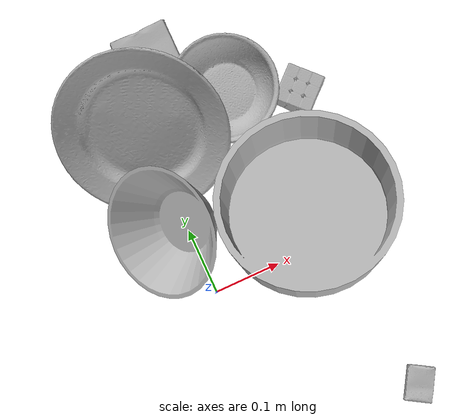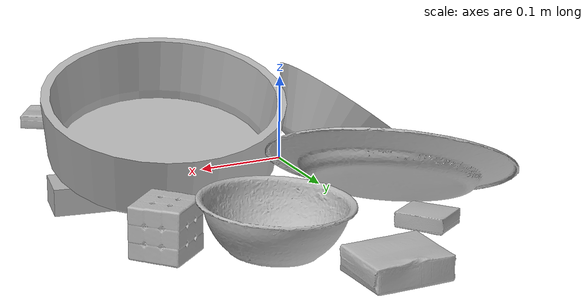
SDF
<sdf version="1.4">
  <world name="default">
    <light name="light1" type="point">
      <pose>0 0 1 0 0 0</pose>
      <diffuse>3 3 3 1</diffuse>
      <specular>3 3 3 1</specular>
    </light>
    <light name="light2" type="point">
      <pose>0 0.5 2 0 0 0</pose>
      <diffuse>1 1 1 1</diffuse>
      <specular>1 1 1 1</specular>
    </light>
    <light name="light3" type="point">
      <pose>0 0.5 2 0 0 0</pose>
      <diffuse>3 3 3 1</diffuse>
      <specular>3 3 3 1</specular>
    </light>
    <scene>
      <ambient>0.7 0.7 0.7</ambient>
    </scene>
    <model name="box1">
      <link name="link_box1">
        <collision name="default">
          <geometry>
            <mesh>
              <uri>model://pudding_box/collision_meshes/collision.obj</uri>
              <scale>0.5 0.5 0.5</scale>
            </mesh>
          </geometry>
          <surface>
            <friction>
              <ode>
                <mu>0.5</mu>
                <mu2>0.5</mu2>
              </ode>
            </friction>
          <contact>
        <ode>
            <max_vel>0</max_vel>
            <min_depth>0.0001</min_depth>
            <kp>1e8</kp>
        </ode>
    </contact></surface>
        </collision>
        <visual name="default">
          <geometry>
            <mesh>
              <uri>model://pudding_box/visual_meshes/visual.dae</uri>
              <scale>0.5 0.5 0.5</scale>
            </mesh>
          </geometry>
        </visual>
        <inertial>
          <mass>0.06043573096394539</mass>
          <pose>0.0002447410661261529 0.00040339428232982755 -0.0002594413817860186 0.005213102238104987 -0.006603800125102895 0.020079827017580043</pose>
          <inertia>
            <ixx>1.707987e-05</ixx>
            <iyy>1.1491458e-05</iyy>
            <izz>2.522289e-05</izz>
            <ixy>0</ixy>
            <ixz>0</ixz>
            <iyz>0</iyz>
          </inertia>
        </inertial>
      </link>
      <pose>-0.041787177324295044 0.26316604018211365 0.009863085113465786 0.02234273050588134 -0.0113787897339799 0.5802445202642985</pose>
    </model>
    <model name="box11">
      <link name="link_box11">
        <collision name="default">
          <geometry>
            <mesh>
              <uri>model://wood_block/collision_meshes/collision.obj</uri>
              <scale>0.5 0.5 0.5</scale>
            </mesh>
          </geometry>
          <surface>
            <friction>
              <ode>
                <mu>0.5</mu>
                <mu2>0.5</mu2>
              </ode>
            </friction>
          <contact>
        <ode>
            <max_vel>0</max_vel>
            <min_depth>0.0001</min_depth>
            <kp>1e8</kp>
        </ode>
    </contact></surface>
        </collision>
        <visual name="default">
          <geometry>
            <mesh>
              <uri>model://wood_block/visual_meshes/visual.dae</uri>
              <scale>0.5 0.5 0.5</scale>
            </mesh>
          </geometry>
        </visual>
        <inertial>
          <mass>0.22556793689727783</mass>
          <pose>-2.9066577553749084e-06 -0.000285404734313488 0.00013204290007706732 -0.05220975528916272 -0.005192696013017626 -0.0068613779154948285</pose>
          <inertia>
            <ixx>7.5461e-05</ixx>
            <iyy>0.00023838133</iyy>
            <izz>0.00023748967</izz>
            <ixy>0</ixy>
            <ixz>0</ixz>
            <iyz>0</iyz>
          </inertia>
        </inertial>
      </link>
      <pose>0.1781572699546814 0.0028367526829242706 0.022632014006376266 -0.00547347421425609 0.005720420456977803 -0.4483890994240161</pose>
    </model>
    <model name="box2">
      <link name="link_box2">
        <collision name="default">
          <geometry>
            <mesh>
              <uri>model://jenga/collision_meshes/collision.obj</uri>
              <scale>1.0 1.0 1.0</scale>
            </mesh>
          </geometry>
          <surface>
            <friction>
              <ode>
                <mu>0.5</mu>
                <mu2>0.5</mu2>
              </ode>
            </friction>
          <contact>
        <ode>
            <max_vel>0</max_vel>
            <min_depth>0.0001</min_depth>
            <kp>1e8</kp>
        </ode>
    </contact></surface>
        </collision>
        <visual name="default">
          <geometry>
            <mesh>
              <uri>model://jenga/visual_meshes/visual.dae</uri>
              <scale>1.0 1.0 1.0</scale>
            </mesh>
          </geometry>
        </visual>
        <inertial>
          <mass>0.2534179985523224</mass>
          <pose>-2.502856091268768e-07 -0.00010250010382151231 -4.0923401684267446e-05 0.0 -7.342154049184251e-07 0.0</pose>
          <inertia>
            <ixx>7.012692e-05</ixx>
            <iyy>0.00047517804</iyy>
            <izz>0.000507293</izz>
            <ixy>0</ixy>
            <ixz>0</ixz>
            <iyz>0</iyz>
          </inertia>
        </inertial>
      </link>
      <pose>0.22320768237113953 0.059660837054252625 0.015000664629042149 -3.289456982830302e-05 -1.9012757527065157e-06 -0.16529624250159308</pose>
    </model>
    <model name="box21">
      <link name="link_box21">
        <collision name="default">
          <geometry>
            <mesh>
              <uri>model://cracker_box/collision_meshes/collision.obj</uri>
              <scale>0.25 0.25 0.25</scale>
            </mesh>
          </geometry>
          <surface>
            <friction>
              <ode>
                <mu>0.5</mu>
                <mu2>0.5</mu2>
              </ode>
            </friction>
          <contact>
        <ode>
            <max_vel>0</max_vel>
            <min_depth>0.0001</min_depth>
            <kp>1e8</kp>
        </ode>
    </contact></surface>
        </collision>
        <visual name="default">
          <geometry>
            <mesh>
              <uri>model://cracker_box/visual_meshes/visual.dae</uri>
              <scale>0.25 0.25 0.25</scale>
            </mesh>
          </geometry>
        </visual>
        <inertial>
          <mass>0.04045860841870308</mass>
          <pose>0.0002366030093980953 6.358561950037256e-05 -0.0004257383698131889 -0.0003162076898946344 -0.011106488668808423 0.0025467959335197018</pose>
          <inertia>
            <ixx>6.4317906e-06</ixx>
            <iyy>1.062015e-05</iyy>
            <izz>1.5155927e-05</izz>
            <ixy>0</ixy>
            <ixz>0</ixz>
            <iyz>0</iyz>
          </inertia>
        </inertial>
      </link>
      <pose>0.21402607858181 -0.246671661734581 0.009120449423789978 -0.01178791092594368 -0.0073671997308579285 1.0251839305084136</pose>
    </model>
    <model name="box3">
      <link name="link_box3">
        <collision name="default">
          <geometry>
            <mesh>
              <uri>model://rubiks_cube/collision_meshes/collision.obj</uri>
              <scale>1.0 1.0 1.0</scale>
            </mesh>
          </geometry>
          <surface>
            <friction>
              <ode>
                <mu>0.5</mu>
                <mu2>0.5</mu2>
              </ode>
            </friction>
          <contact>
        <ode>
            <max_vel>0</max_vel>
            <min_depth>0.0001</min_depth>
            <kp>1e8</kp>
        </ode>
    </contact></surface>
        </collision>
        <visual name="default">
          <geometry>
            <mesh>
              <uri>model://rubiks_cube/visual_meshes/visual.dae</uri>
              <scale>1.0 1.0 1.0</scale>
            </mesh>
          </geometry>
        </visual>
        <inertial>
          <mass>0.12779320776462555</mass>
          <pose>2.6721041649580002e-05 5.2569666877388954e-05 -7.264316082000732e-06 -0.054672129212199855 -0.09814057073985563 -0.03445704008669109</pose>
          <inertia>
            <ixx>7.061434e-05</ixx>
            <iyy>7.0285016e-05</iyy>
            <izz>7.119949e-05</izz>
            <ixy>0</ixy>
            <ixz>0</ixz>
            <iyz>0</iyz>
          </inertia>
        </inertial>
      </link>
      <pose>0.23349006474018097 0.21809038519859314 0.028678979724645615 -3.876337770441788e-06 1.1014791484260497e-06 -0.8300218169652757</pose>
    </model>
    <model name="box31">
      <link name="link_box31">
        <collision name="default">
          <geometry>
            <mesh>
              <uri>model://gelatin_box/collision_meshes/collision.obj</uri>
              <scale>1.0 1.0 1.0</scale>
            </mesh>
          </geometry>
          <surface>
            <friction>
              <ode>
                <mu>0.5</mu>
                <mu2>0.5</mu2>
              </ode>
            </friction>
          <contact>
        <ode>
            <max_vel>0</max_vel>
            <min_depth>0.0001</min_depth>
            <kp>1e8</kp>
        </ode>
    </contact></surface>
        </collision>
        <visual name="default">
          <geometry>
            <mesh>
              <uri>model://gelatin_box/visual_meshes/visual.dae</uri>
              <scale>1.0 1.0 1.0</scale>
            </mesh>
          </geometry>
        </visual>
        <inertial>
          <mass>0.20050984621047974</mass>
          <pose>0.0004319618456065655 0.00011156872642459348 -0.00036403213744051754 -0.0010503720853528096 -0.004755817758068365 0.016440559471334753</pose>
          <inertia>
            <ixx>0.00014154361</ixx>
            <iyy>0.00010110386</iyy>
            <izz>0.0002154609</izz>
            <ixy>0</ixy>
            <ixz>0</ixz>
            <iyz>0</iyz>
          </inertia>
        </inertial>
      </link>
      <pose>0.053506262600421906 0.36331814527511597 0.015168312937021255 0.00559659157733761 -0.007303775961679399 1.563614036514229</pose>
    </model>
    <model name="plate1">
      <link name="link_plate1">
        <collision name="default">
          <geometry>
            <mesh>
              <uri>model://pan_tefal/collision_meshes/collision.obj</uri>
              <scale>1.0 1.0 1.0</scale>
            </mesh>
          </geometry>
          <surface>
            <friction>
              <ode>
                <mu>0.5</mu>
                <mu2>0.5</mu2>
              </ode>
            </friction>
          <contact>
        <ode>
            <max_vel>0</max_vel>
            <min_depth>0.0001</min_depth>
            <kp>1e8</kp>
        </ode>
    </contact></surface>
        </collision>
        <visual name="default">
          <geometry>
            <mesh>
              <uri>model://pan_tefal/visual_meshes/visual.dae</uri>
              <scale>1.0 1.0 1.0</scale>
            </mesh>
          </geometry>
        </visual>
        <inertial>
          <mass>0.9166961908340454</mass>
          <pose>-0.00018002631259150803 3.279098018538207e-05 -0.00851493515074253 0.0008190256602529888 -0.0003301357182707761 -0.33185348708971</pose>
          <inertia>
            <ixx>0.006327908</ixx>
            <iyy>0.006368705</iyy>
            <izz>0.01164846</izz>
            <ixy>0</ixy>
            <ixz>0</ixz>
            <iyz>0</iyz>
          </inertia>
        </inertial>
      </link>
      <pose>0.16975955665111542 0.056915488094091415 0.07916779071092606 -0.2100950686435976 0.1332702378940026 0.3627695950638451</pose>
    </model>
    <model name="bowl1">
      <link name="link_bowl1">
        <collision name="default">
          <geometry>
            <mesh>
              <uri>model://bowl_a/collision_meshes/collision.obj</uri>
              <scale>1.0 1.0 1.0</scale>
            </mesh>
          </geometry>
          <surface>
            <friction>
              <ode>
                <mu>0.5</mu>
                <mu2>0.5</mu2>
              </ode>
            </friction>
          <contact>
        <ode>
            <max_vel>0</max_vel>
            <min_depth>0.0001</min_depth>
            <kp>1e8</kp>
        </ode>
    </contact></surface>
        </collision>
        <visual name="default">
          <geometry>
            <mesh>
              <uri>model://bowl_a/visual_meshes/visual.dae</uri>
              <scale>1.0 1.0 1.0</scale>
            </mesh>
          </geometry>
        </visual>
        <inertial>
          <mass>0.44606471061706543</mass>
          <pose>0.0002786746481433511 4.7312179958680645e-05 -0.0013765294570475817 -0.0009805488171165768 -0.0010938123304380014 -0.19122487556540352</pose>
          <inertia>
            <ixx>0.0012699668</ixx>
            <iyy>0.001277764</iyy>
            <izz>0.0022586845</izz>
            <ixy>0</ixy>
            <ixz>0</ixz>
            <iyz>0</iyz>
          </inertia>
        </inertial>
      </link>
      <pose>-0.016708340495824814 0.1113458052277565 0.05896060913801193 0.6793072960710128 0.15470934199753394 -1.697087843931581</pose>
    </model>
    <model name="plate2">
      <link name="link_plate2">
        <collision name="default">
          <geometry>
            <mesh>
              <uri>model://plate/collision_meshes/collision.obj</uri>
              <scale>1.0 1.0 1.0</scale>
            </mesh>
          </geometry>
          <surface>
            <friction>
              <ode>
                <mu>0.5</mu>
                <mu2>0.5</mu2>
              </ode>
            </friction>
          <contact>
        <ode>
            <max_vel>0</max_vel>
            <min_depth>0.0001</min_depth>
            <kp>1e8</kp>
        </ode>
    </contact></surface>
        </collision>
        <visual name="default">
          <geometry>
            <mesh>
              <uri>model://plate/visual_meshes/visual.dae</uri>
              <scale>1.0 1.0 1.0</scale>
            </mesh>
          </geometry>
        </visual>
        <inertial>
          <mass>0.10088177025318146</mass>
          <pose>-0.0006044645560905337 0.0002782582596410066 -0.0010561994276940823 0.002218810424575964 -0.003225458488037908 0.4526011088858205</pose>
          <inertia>
            <ixx>0.00047192685</ixx>
            <iyy>0.00046741302</iyy>
            <izz>0.00092301855</izz>
            <ixy>0</ixy>
            <ixz>0</ixz>
            <iyz>0</iyz>
          </inertia>
        </inertial>
      </link>
      <pose>0.0002561810542829335 0.2564232349395752 0.0641033947467804 0.43568593195503635 -0.37697168003524334 0.05266100047249134</pose>
    </model>
    <model name="bowl2">
      <link name="link_bowl2">
        <collision name="default">
          <geometry>
            <mesh>
              <uri>model://bowl/collision_meshes/collision.obj</uri>
              <scale>1.0 1.0 1.0</scale>
            </mesh>
          </geometry>
          <surface>
            <friction>
              <ode>
                <mu>0.5</mu>
                <mu2>0.5</mu2>
              </ode>
            </friction>
          <contact>
        <ode>
            <max_vel>0</max_vel>
            <min_depth>0.0001</min_depth>
            <kp>1e8</kp>
        </ode>
    </contact></surface>
        </collision>
        <visual name="default">
          <geometry>
            <mesh>
              <uri>model://bowl/visual_meshes/visual.dae</uri>
              <scale>1.0 1.0 1.0</scale>
            </mesh>
          </geometry>
        </visual>
        <inertial>
          <mass>0.10570208728313446</mass>
          <pose>0.00020445376867428422 -0.00103021040558815 -0.000804263399913907 -0.015764090239829616 0.014546785988443214 0.7140402180265782</pose>
          <inertia>
            <ixx>0.00024280604</ixx>
            <iyy>0.0002373808</iyy>
            <izz>0.0004084832</izz>
            <ixy>0</ixy>
            <ixz>0</ixz>
            <iyz>0</iyz>
          </inertia>
        </inertial>
      </link>
      <pose>0.13510680198669434 0.2641434371471405 0.030730661004781723 0.062354569970514015 -0.03283606972014942 -0.9171587530245737</pose>
    </model>
  <physics type="ode">
      <max_contacts>50</max_contacts>
      <ode>
        <solver>
          <type>quick</type>
          <iters>75</iters>
        </solver>
        <constraints>
          <contact_max_correcting_vel>0</contact_max_correcting_vel>
          <contact_surface_layer>0</contact_surface_layer>
        </constraints>
      </ode>
    </physics></world>
</sdf>
